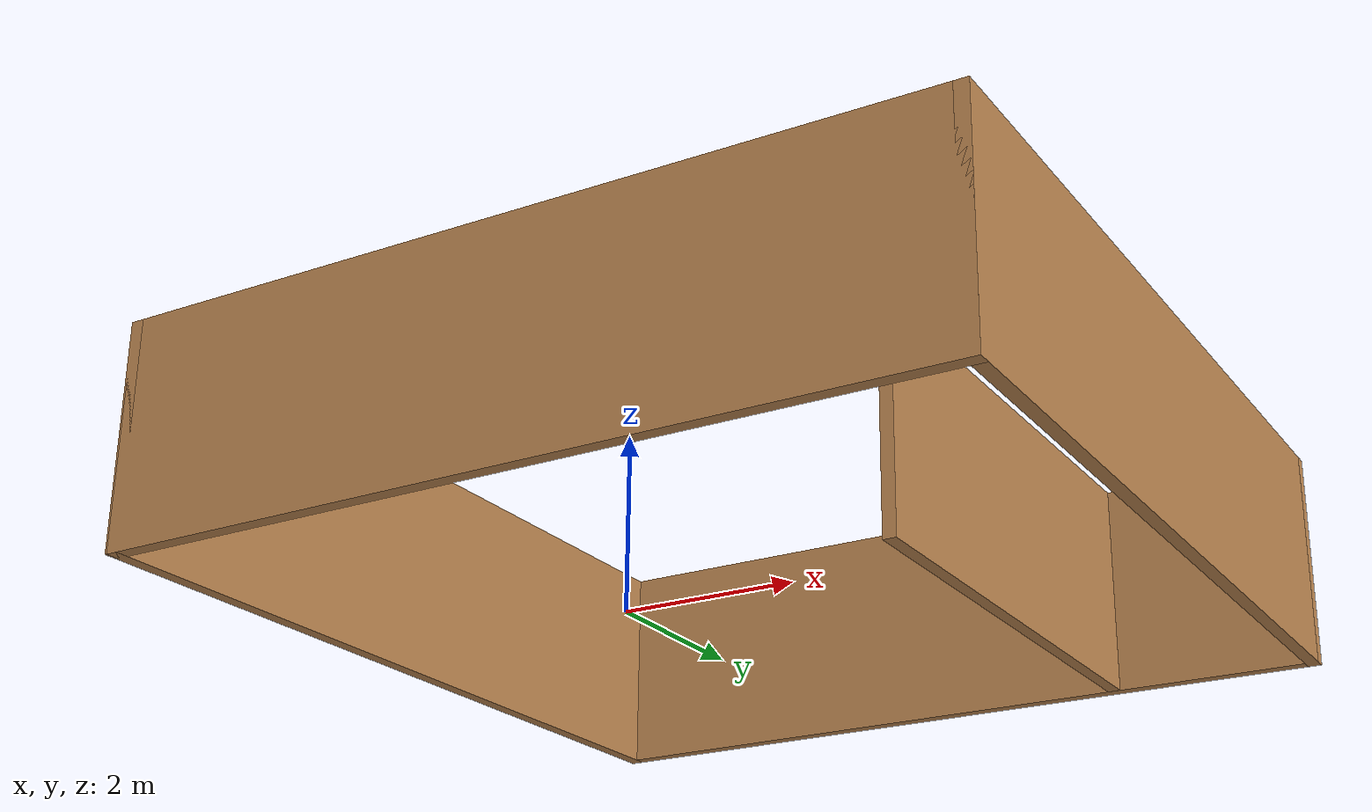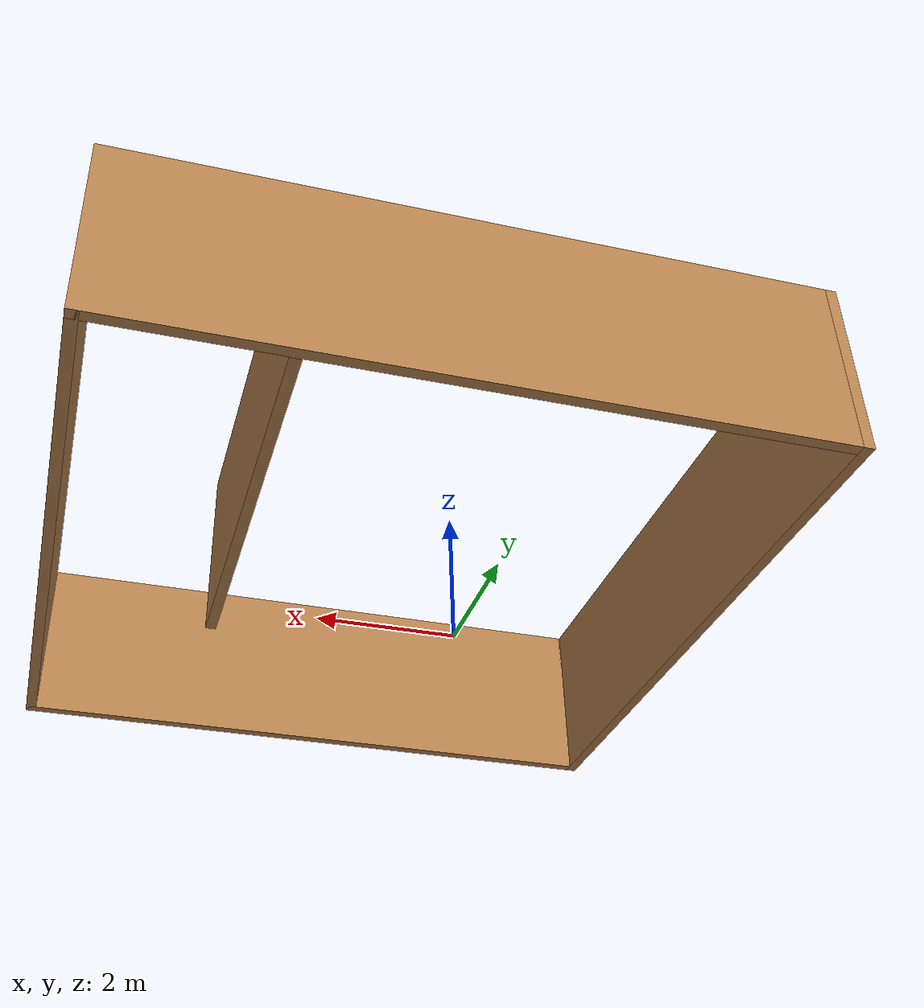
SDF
<?xml version='1.0'?>
<sdf version='1.7'>
  <model name='square'>
    <pose>1.20219 0.745187 0 0 -0 0</pose>
    <link name='Wall_1'>
      <collision name='Wall_1_Collision'>
        <geometry>
          <box>
            <size>9.5 0.15 2.5</size>
          </box>
        </geometry>
        <pose>0 0 1.25 0 -0 0</pose>
      </collision>
      <visual name='Wall_1_Visual'>
        <pose>0 0 1.25 0 -0 0</pose>
        <geometry>
          <box>
            <size>9.5 0.15 2.5</size>
          </box>
        </geometry>
        <material>
          <script>
            <uri>file://media/materials/scripts/gazebo.material</uri>
            <name>Gazebo/Wood</name>
          </script>
          <ambient>1 1 1 1</ambient>
        </material>
        <meta>
          <layer>0</layer>
        </meta>
      </visual>
      <pose>-4.55992 0 0 0 -0 -1.5708</pose>
    </link>
    <link name='Wall_2'>
      <collision name='Wall_2_Collision'>
        <geometry>
          <box>
            <size>0.15 0.15 2.5</size>
          </box>
        </geometry>
        <pose>0 0 1.25 0 -0 0</pose>
      </collision>
      <visual name='Wall_2_Visual'>
        <pose>0 0 1.25 0 -0 0</pose>
        <geometry>
          <box>
            <size>0.15 0.15 2.5</size>
          </box>
        </geometry>
        <material>
          <script>
            <uri>file://media/materials/scripts/gazebo.material</uri>
            <name>Gazebo/Grey</name>
          </script>
          <ambient>1 1 1 1</ambient>
        </material>
        <meta>
          <layer>0</layer>
        </meta>
      </visual>
      <pose>-4.54008 -4.675 0 0 -0 0</pose>
    </link>
    <link name='Wall_4'>
      <collision name='Wall_4_Collision'>
        <geometry>
          <box>
            <size>9.25 0.15 2.5</size>
          </box>
        </geometry>
        <pose>0 0 1.25 0 -0 0</pose>
      </collision>
      <visual name='Wall_4_Visual'>
        <pose>0 0 1.25 0 -0 0</pose>
        <geometry>
          <box>
            <size>9.25 0.15 2.5</size>
          </box>
        </geometry>
        <material>
          <script>
            <uri>file://media/materials/scripts/gazebo.material</uri>
            <name>Gazebo/Wood</name>
          </script>
          <ambient>1 1 1 1</ambient>
        </material>
        <meta>
          <layer>0</layer>
        </meta>
      </visual>
      <pose>0.009919 -4.675 0 0 -0 0</pose>
    </link>
    <link name='Wall_5'>
      <collision name='Wall_5_Collision'>
        <geometry>
          <box>
            <size>9.5 0.15 2.5</size>
          </box>
        </geometry>
        <pose>0 0 1.25 0 -0 0</pose>
      </collision>
      <visual name='Wall_5_Visual'>
        <pose>0 0 1.25 0 -0 0</pose>
        <geometry>
          <box>
            <size>9.5 0.15 2.5</size>
          </box>
        </geometry>
        <material>
          <script>
            <uri>file://media/materials/scripts/gazebo.material</uri>
            <name>Gazebo/Wood</name>
          </script>
          <ambient>1 1 1 1</ambient>
        </material>
        <meta>
          <layer>0</layer>
        </meta>
      </visual>
      <pose>4.55992 0 0 0 -0 1.5708</pose>
    </link>
    <link name='Wall_7'>
      <collision name='Wall_7_Collision'>
        <geometry>
          <box>
            <size>9.26984 0.15 2.5</size>
          </box>
        </geometry>
        <pose>0 0 1.25 0 -0 0</pose>
      </collision>
      <visual name='Wall_7_Visual'>
        <pose>0 0 1.25 0 -0 0</pose>
        <geometry>
          <box>
            <size>9.26984 0.15 2.5</size>
          </box>
        </geometry>
        <material>
          <script>
            <uri>file://media/materials/scripts/gazebo.material</uri>
            <name>Gazebo/Wood</name>
          </script>
          <ambient>1 1 1 1</ambient>
        </material>
        <meta>
          <layer>0</layer>
        </meta>
      </visual>
      <pose>-0 4.675 0 0 -0 0</pose>
    </link>
    <link name='Wall_9'>
      <collision name='Wall_9_Collision'>
        <geometry>
          <box>
            <size>6 0.15 2.5</size>
          </box>
        </geometry>
        <pose>0 0 1.25 0 -0 0</pose>
      </collision>
      <visual name='Wall_9_Visual'>
        <pose>0 0 1.25 0 -0 0</pose>
        <geometry>
          <box>
            <size>6 0.15 2.5</size>
          </box>
        </geometry>
        <material>
          <script>
            <uri>file://media/materials/scripts/gazebo.material</uri>
            <name>Gazebo/Wood</name>
          </script>
          <ambient>1 1 1 1</ambient>
        </material>
        <meta>
          <layer>0</layer>
        </meta>
      </visual>
      <pose>2.20402 1.59073 0 0 -0 -1.5708</pose>
    </link>
    <static>1</static>
  </model>
</sdf>
